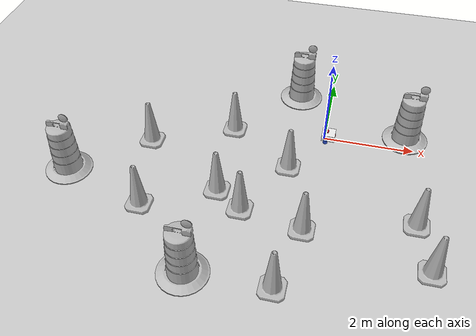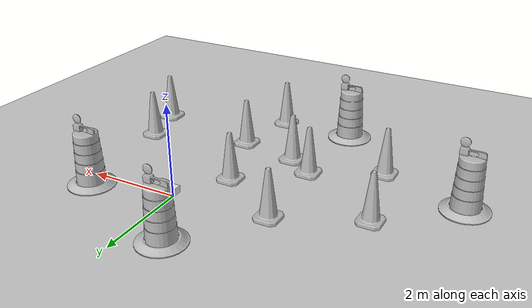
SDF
<sdf version="1.7">
 <world name="default">
  <light name="sun" type="directional">
   <pose>0 0 10 0 -0 0</pose>
   <diffuse>0.8 0.8 0.8 1</diffuse>
   <specular>0.2 0.2 0.2 1</specular>
   <attenuation>
    <range>1000</range>
    <constant>0.9</constant>
    <linear>0.01</linear>
    <quadratic>0.001</quadratic>
   </attenuation>
   <direction>-0.5 0.1 -0.9</direction>
   <spot><inner_angle>0</inner_angle><outer_angle>0</outer_angle><falloff>0</falloff></spot>
  </light>
  <model name="ground_plane">
   <static>1</static>
   <link name="link">
    <collision name="collision">
     <geometry><plane><normal>0 0 1</normal><size>100 100</size></plane></geometry>
     <surface>
      <contact><collide_bitmask>65535</collide_bitmask></contact>
      <friction><ode><mu>100</mu><mu2>50</mu2></ode></friction>
     </surface>
    </collision>
    <visual name="visual">
     <cast_shadows>0</cast_shadows>
     <geometry><plane><normal>0 0 1</normal><size>100 100</size></plane></geometry>
     <material>
      <script><uri>file://media/materials/scripts/gazebo.material</uri><name>Gazebo/Grey</name></script>
     </material>
    </visual>
   </link>
  </model>
  <gravity>0 0 -9.8</gravity>
  <magnetic_field>6e-06 2.3e-05 -4.2e-05</magnetic_field>
  <atmosphere type="adiabatic"/>
  <physics type="ode">
   <max_step_size>0.001</max_step_size>
   <real_time_factor>1</real_time_factor>
   <real_time_update_rate>1000</real_time_update_rate>
  </physics>
  <scene><ambient>0.4 0.4 0.4 1</ambient><background>0.7 0.7 0.7 1</background><shadows>1</shadows></scene>
  <spherical_coordinates>
   <surface_model>EARTH_WGS84</surface_model>
   <latitude_deg>0</latitude_deg>
   <longitude_deg>0</longitude_deg>
   <elevation>0</elevation>
   <heading_deg>0</heading_deg>
  </spherical_coordinates>
  <model name="Construction Barrel">
   <link name="link">
    <inertial>
     <pose>0 0 0.4 0 -0 0</pose>
     <mass>500</mass>
     <inertia><ixx>51.2096</ixx><iyy>51.2096</iyy><izz>25</izz><ixy>0</ixy><ixz>0</ixz><iyz>0</iyz></inertia>
    </inertial>
    <collision name="collision">
     <geometry><mesh><uri>model://construction_barrel/meshes/construction_barrel.dae</uri></mesh></geometry>
    </collision>
    <visual name="visual">
     <geometry><mesh><uri>model://construction_barrel/meshes/construction_barrel.dae</uri></mesh></geometry>
    </visual>
   </link>
   <pose>-0.756364 1.3922 -3e-06 0 -1.2e-05 -2.8e-05</pose>
  </model>
  <model name="Construction Barrel_0">
   <link name="link">
    <inertial>
     <pose>0 0 0.4 0 -0 0</pose>
     <mass>500</mass>
     <inertia><ixx>51.2096</ixx><iyy>51.2096</iyy><izz>25</izz><ixy>0</ixy><ixz>0</ixz><iyz>0</iyz></inertia>
    </inertial>
    <collision name="collision">
     <geometry><mesh><uri>model://construction_barrel/meshes/construction_barrel.dae</uri></mesh></geometry>
    </collision>
    <visual name="visual">
     <geometry><mesh><uri>model://construction_barrel/meshes/construction_barrel.dae</uri></mesh></geometry>
    </visual>
   </link>
   <pose>1.80009 0.37711 -2e-06 1e-06 8e-06 -2.7e-05</pose>
  </model>
  <model name="Construction Cone">
   <link name="link">
    <collision name="collision">
     <geometry>
      <mesh><scale>10 10 10</scale><uri>model://construction_cone/meshes/construction_cone.dae</uri></mesh>
     </geometry>
    </collision>
    <visual name="visual">
     <geometry>
      <mesh><scale>10 10 10</scale><uri>model://construction_cone/meshes/construction_cone.dae</uri></mesh>
     </geometry>
    </visual>
    <inertial>
     <inertia><ixx>1</ixx><ixy>0</ixy><ixz>0</ixz><iyy>1</iyy><iyz>0</iyz><izz>1</izz></inertia>
     <mass>1</mass>
    </inertial>
   </link>
   <pose>-1.9896 -2.15099 0 -0 -0 -0</pose>
  </model>
  <model name="Construction Cone_0">
   <link name="link">
    <collision name="collision">
     <geometry>
      <mesh><scale>10 10 10</scale><uri>model://construction_cone/meshes/construction_cone.dae</uri></mesh>
     </geometry>
    </collision>
    <visual name="visual">
     <geometry>
      <mesh><scale>10 10 10</scale><uri>model://construction_cone/meshes/construction_cone.dae</uri></mesh>
     </geometry>
    </visual>
    <inertial>
     <inertia><ixx>1</ixx><ixy>0</ixy><ixz>0</ixz><iyy>1</iyy><iyz>0</iyz><izz>1</izz></inertia>
     <mass>1</mass>
    </inertial>
   </link>
   <pose>-1.40494 -2.55135 -0 0 -1e-06 0</pose>
  </model>
  <model name="Construction Cone_1">
   <link name="link">
    <collision name="collision">
     <geometry>
      <mesh><scale>10 10 10</scale><uri>model://construction_cone/meshes/construction_cone.dae</uri></mesh>
     </geometry>
    </collision>
    <visual name="visual">
     <geometry>
      <mesh><scale>10 10 10</scale><uri>model://construction_cone/meshes/construction_cone.dae</uri></mesh>
     </geometry>
    </visual>
    <inertial>
     <inertia><ixx>1</ixx><ixy>0</ixy><ixz>0</ixz><iyy>1</iyy><iyz>0</iyz><izz>1</izz></inertia>
     <mass>1</mass>
    </inertial>
   </link>
   <pose>-0.095396 -2.79731 -0 0 -1e-06 0</pose>
  </model>
  <model name="Construction Cone_2">
   <link name="link">
    <collision name="collision">
     <geometry>
      <mesh><scale>10 10 10</scale><uri>model://construction_cone/meshes/construction_cone.dae</uri></mesh>
     </geometry>
    </collision>
    <visual name="visual">
     <geometry>
      <mesh><scale>10 10 10</scale><uri>model://construction_cone/meshes/construction_cone.dae</uri></mesh>
     </geometry>
    </visual>
    <inertial>
     <inertia><ixx>1</ixx><ixy>0</ixy><ixz>0</ixz><iyy>1</iyy><iyz>0</iyz><izz>1</izz></inertia>
     <mass>1</mass>
    </inertial>
   </link>
   <pose>2.09724 -2.18232 -0 0 -1e-06 0</pose>
  </model>
  <model name="Construction Cone_3">
   <link name="link">
    <collision name="collision">
     <geometry>
      <mesh><scale>10 10 10</scale><uri>model://construction_cone/meshes/construction_cone.dae</uri></mesh>
     </geometry>
    </collision>
    <visual name="visual">
     <geometry>
      <mesh><scale>10 10 10</scale><uri>model://construction_cone/meshes/construction_cone.dae</uri></mesh>
     </geometry>
    </visual>
    <inertial>
     <inertia><ixx>1</ixx><ixy>0</ixy><ixz>0</ixz><iyy>1</iyy><iyz>0</iyz><izz>1</izz></inertia>
     <mass>1</mass>
    </inertial>
   </link>
   <pose>-2.07511 -0.189662 -0 0 -0 0</pose>
  </model>
  <model name="Construction Cone_4">
   <link name="link">
    <collision name="collision">
     <geometry>
      <mesh><scale>10 10 10</scale><uri>model://construction_cone/meshes/construction_cone.dae</uri></mesh>
     </geometry>
    </collision>
    <visual name="visual">
     <geometry>
      <mesh><scale>10 10 10</scale><uri>model://construction_cone/meshes/construction_cone.dae</uri></mesh>
     </geometry>
    </visual>
    <inertial>
     <inertia><ixx>1</ixx><ixy>0</ixy><ixz>0</ixz><iyy>1</iyy><iyz>0</iyz><izz>1</izz></inertia>
     <mass>1</mass>
    </inertial>
   </link>
   <pose>-0.406438 -4.23374 -1e-05 -1e-06 0 0</pose>
  </model>
  <model name="Construction Cone_5">
   <link name="link">
    <collision name="collision">
     <geometry>
      <mesh><scale>10 10 10</scale><uri>model://construction_cone/meshes/construction_cone.dae</uri></mesh>
     </geometry>
    </collision>
    <visual name="visual">
     <geometry>
      <mesh><scale>10 10 10</scale><uri>model://construction_cone/meshes/construction_cone.dae</uri></mesh>
     </geometry>
    </visual>
    <inertial>
     <inertia><ixx>1</ixx><ixy>0</ixy><ixz>0</ixz><iyy>1</iyy><iyz>0</iyz><izz>1</izz></inertia>
     <mass>1</mass>
    </inertial>
   </link>
   <pose>2.38815 -3.2576 -0 0 -0 0</pose>
  </model>
  <model name="Construction Cone_6">
   <link name="link">
    <collision name="collision">
     <geometry>
      <mesh><scale>10 10 10</scale><uri>model://construction_cone/meshes/construction_cone.dae</uri></mesh>
     </geometry>
    </collision>
    <visual name="visual">
     <geometry>
      <mesh><scale>10 10 10</scale><uri>model://construction_cone/meshes/construction_cone.dae</uri></mesh>
     </geometry>
    </visual>
    <inertial>
     <inertia><ixx>1</ixx><ixy>0</ixy><ixz>0</ixz><iyy>1</iyy><iyz>0</iyz><izz>1</izz></inertia>
     <mass>1</mass>
    </inertial>
   </link>
   <pose>-0.652728 -1.14237 -0 0 -0 0</pose>
  </model>
  <model name="Construction Cone_7">
   <link name="link">
    <collision name="collision">
     <geometry>
      <mesh><scale>10 10 10</scale><uri>model://construction_cone/meshes/construction_cone.dae</uri></mesh>
     </geometry>
    </collision>
    <visual name="visual">
     <geometry>
      <mesh><scale>10 10 10</scale><uri>model://construction_cone/meshes/construction_cone.dae</uri></mesh>
     </geometry>
    </visual>
    <inertial>
     <inertia><ixx>1</ixx><ixy>0</ixy><ixz>0</ixz><iyy>1</iyy><iyz>0</iyz><izz>1</izz></inertia>
     <mass>1</mass>
    </inertial>
   </link>
   <pose>-3.44889 -2.8754 -0 0 -1e-06 0</pose>
  </model>
  <model name="Construction Cone_8">
   <link name="link">
    <collision name="collision">
     <geometry>
      <mesh><scale>10 10 10</scale><uri>model://construction_cone/meshes/construction_cone.dae</uri></mesh>
     </geometry>
    </collision>
    <visual name="visual">
     <geometry>
      <mesh><scale>10 10 10</scale><uri>model://construction_cone/meshes/construction_cone.dae</uri></mesh>
     </geometry>
    </visual>
    <inertial>
     <inertia><ixx>1</ixx><ixy>0</ixy><ixz>0</ixz><iyy>1</iyy><iyz>0</iyz><izz>1</izz></inertia>
     <mass>1</mass>
    </inertial>
   </link>
   <pose>-3.83463 -0.986077 -0 0 -0 0</pose>
  </model>
  <model name="Construction Barrel_1">
   <link name="link">
    <inertial>
     <pose>0 0 0.4 0 -0 0</pose>
     <mass>500</mass>
     <inertia><ixx>51.2096</ixx><iyy>51.2096</iyy><izz>25</izz><ixy>0</ixy><ixz>0</ixz><iyz>0</iyz></inertia>
    </inertial>
    <collision name="collision">
     <geometry><mesh><uri>model://construction_barrel/meshes/construction_barrel.dae</uri></mesh></geometry>
    </collision>
    <visual name="visual">
     <geometry><mesh><uri>model://construction_barrel/meshes/construction_barrel.dae</uri></mesh></geometry>
    </visual>
   </link>
   <pose>-5.31085 -2.23712 0 0 0 -2.8e-05</pose>
  </model>
  <model name="Construction Barrel_2">
   <link name="link">
    <inertial>
     <pose>0 0 0.4 0 -0 0</pose>
     <mass>500</mass>
     <inertia><ixx>51.2096</ixx><iyy>51.2096</iyy><izz>25</izz><ixy>0</ixy><ixz>0</ixz><iyz>0</iyz></inertia>
    </inertial>
    <collision name="collision">
     <geometry><mesh><uri>model://construction_barrel/meshes/construction_barrel.dae</uri></mesh></geometry>
    </collision>
    <visual name="visual">
     <geometry><mesh><uri>model://construction_barrel/meshes/construction_barrel.dae</uri></mesh></geometry>
    </visual>
   </link>
   <pose>-2.07702 -4.26202 -2e-06 1e-06 8e-06 -2.8e-05</pose>
  </model>
  <audio><device>default</device></audio>
  <model name="robot">
   <link name="base_link">
    <inertial>
     <pose>0.055714 0 0.078571 0 -0 0</pose>
     <mass>0.7</mass>
     <inertia>
      <ixx>0.0064169</ixx>
      <ixy>0</ixy>
      <ixz>0.00118929</ixz>
      <iyy>0.00745405</iyy>
      <iyz>0</iyz>
      <izz>0.00876214</izz>
     </inertia>
    </inertial>
    <collision name="base_link_fixed_joint_lump__chassis_collision">
     <pose>0.05 0 0.075 0 -0 0</pose>
     <geometry><box><size>0.3 0.3 0.15</size></box></geometry>
    </collision>
    <collision name="base_link_fixed_joint_lump__caster_wheel_collision_1">
     <pose>0.14 0 0 0 -0 0</pose>
     <geometry><sphere><radius>0.05</radius></sphere></geometry>
     <surface><friction><ode><mu>0.001</mu><mu2>0.001</mu2></ode></friction></surface>
    </collision>
    <collision name="base_link_fixed_joint_lump__laser_frame_collision_2">
     <pose>0 0 0.175 0 -0 0</pose>
     <geometry><cylinder><length>0.04</length><radius>0.05</radius></cylinder></geometry>
    </collision>
    <visual name="base_link_fixed_joint_lump__chassis_visual">
     <pose>0.05 0 0.075 0 -0 0</pose>
     <geometry><box><size>0.3 0.3 0.15</size></box></geometry>
     <material>
      <script><name>Gazebo/White</name><uri>file://media/materials/scripts/gazebo.material</uri></script>
     </material>
    </visual>
    <visual name="base_link_fixed_joint_lump__camera_link_visual_1">
     <pose>0.205 0 0.08 0 -0 0</pose>
     <geometry><box><size>0.01 0.03 0.03</size></box></geometry>
     <material>
      <script><name>Gazebo/Red</name><uri>file://media/materials/scripts/gazebo.material</uri></script>
     </material>
    </visual>
    <visual name="base_link_fixed_joint_lump__caster_wheel_visual_2">
     <pose>0.14 0 0 0 -0 0</pose>
     <geometry><sphere><radius>0.05</radius></sphere></geometry>
     <material>
      <script><name>Gazebo/Black</name><uri>file://media/materials/scripts/gazebo.material</uri></script>
     </material>
    </visual>
    <visual name="base_link_fixed_joint_lump__laser_frame_visual_3">
     <pose>0 0 0.175 0 -0 0</pose>
     <geometry><cylinder><length>0.04</length><radius>0.05</radius></cylinder></geometry>
     <material>
      <script><name>Gazebo/Red</name><uri>file://media/materials/scripts/gazebo.material</uri></script>
     </material>
    </visual>
    <sensor name="camera" type="camera">
     <visualize>1</visualize>
     <update_rate>10</update_rate>
     <camera>
      <horizontal_fov>1.089</horizontal_fov>
      <image><format>R8G8B8</format><width>640</width><height>480</height></image>
      <clip><near>0.05</near><far>8</far></clip>
     </camera>
     <plugin name="camera_controller" filename="libgazebo_ros_camera.so">
      <frame_name>camera_link_optical</frame_name>
     </plugin>
     <pose>0.205 0 0.08 0 -0 0</pose>
    </sensor>
    <sensor name="laser" type="ray">
     <visualize>0</visualize>
     <update_rate>10</update_rate>
     <ray>
      <scan>
       <horizontal>
        <samples>360</samples>
        <min_angle>-3.1415</min_angle>
        <max_angle>3.1415</max_angle>
        <resolution>1</resolution>
       </horizontal>
       <vertical><samples>1</samples><min_angle>0</min_angle><max_angle>0</max_angle></vertical>
      </scan>
      <range><min>0.3</min><max>12</max></range>
     </ray>
     <plugin name="laser_controller" filename="libgazebo_ros_ray_sensor.so">
      <ros><argument>~/out:=scan</argument></ros>
      <output_type>sensor_msgs/LaserScan</output_type>
      <frame_name>laser_frame</frame_name>
     </plugin>
     <pose>0 0 0.175 0 -0 0</pose>
    </sensor>
   </link>
   <joint name="left_wheel_joint" type="revolute">
    <pose relative_to="base_link">0 0.175 0 -1.5708 0 0</pose>
    <parent>base_link</parent>
    <child>left_wheel</child>
    <axis>
     <xyz>0 0 1</xyz>
     <limit><lower>-1e+16</lower><upper>1e+16</upper></limit>
     <dynamics><spring_reference>0</spring_reference><spring_stiffness>0</spring_stiffness></dynamics>
    </axis>
   </joint>
   <link name="left_wheel">
    <pose relative_to="left_wheel_joint">0 0 0 0 -0 0</pose>
    <inertial>
     <mass>0.1</mass>
     <inertia>
      <ixx>7.58333e-05</ixx>
      <ixy>0</ixy>
      <ixz>0</ixz>
      <iyy>7.58333e-05</iyy>
      <iyz>0</iyz>
      <izz>0.000125</izz>
     </inertia>
    </inertial>
    <collision name="left_wheel_collision"><geometry><sphere><radius>0.05</radius></sphere></geometry></collision>
    <visual name="left_wheel_visual">
     <geometry><cylinder><length>0.04</length><radius>0.05</radius></cylinder></geometry>
     <material>
      <script><name>Gazebo/Blue</name><uri>file://media/materials/scripts/gazebo.material</uri></script>
     </material>
    </visual>
   </link>
   <joint name="right_wheel_joint" type="revolute">
    <pose relative_to="base_link">0 -0.175 0 1.5708 -0 0</pose>
    <parent>base_link</parent>
    <child>right_wheel</child>
    <axis>
     <xyz>0 0 -1</xyz>
     <limit><lower>-1e+16</lower><upper>1e+16</upper></limit>
     <dynamics><spring_reference>0</spring_reference><spring_stiffness>0</spring_stiffness></dynamics>
    </axis>
   </joint>
   <link name="right_wheel">
    <pose relative_to="right_wheel_joint">0 0 0 0 -0 0</pose>
    <inertial>
     <mass>0.1</mass>
     <inertia>
      <ixx>7.58333e-05</ixx>
      <ixy>0</ixy>
      <ixz>0</ixz>
      <iyy>7.58333e-05</iyy>
      <iyz>0</iyz>
      <izz>0.000125</izz>
     </inertia>
    </inertial>
    <collision name="right_wheel_collision">
     <geometry><sphere><radius>0.05</radius></sphere></geometry>
    </collision>
    <visual name="right_wheel_visual">
     <geometry><cylinder><length>0.04</length><radius>0.05</radius></cylinder></geometry>
     <material>
      <script><name>Gazebo/Blue</name><uri>file://media/materials/scripts/gazebo.material</uri></script>
     </material>
    </visual>
   </link>
   <static>0</static>
   <plugin name="gazebo_ros2_control" filename="libgazebo_ros2_control.so">
    <parameters>/home/mpinho/proj_ws/install/msc_aut_vehicles/share/msc_aut_vehicles/config/my_controllers.yaml</parameters>
   </plugin>
   <pose>0.03309 0.000851 0.049997 1.5e-05 -2.1e-05 -0.002566</pose>
  </model>
 </world>
</sdf>
